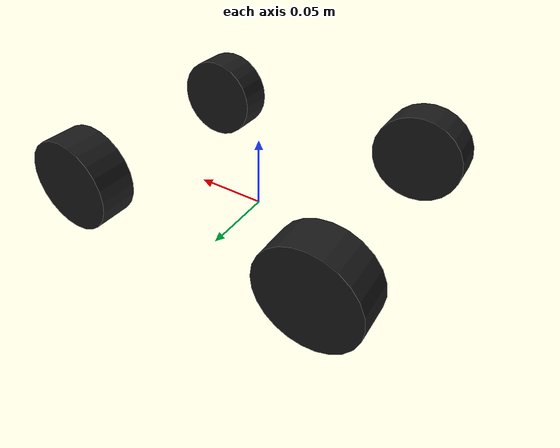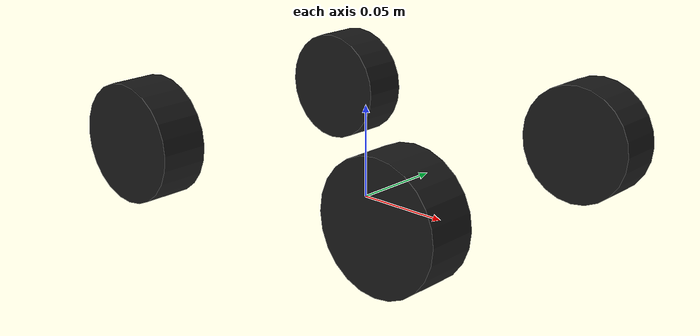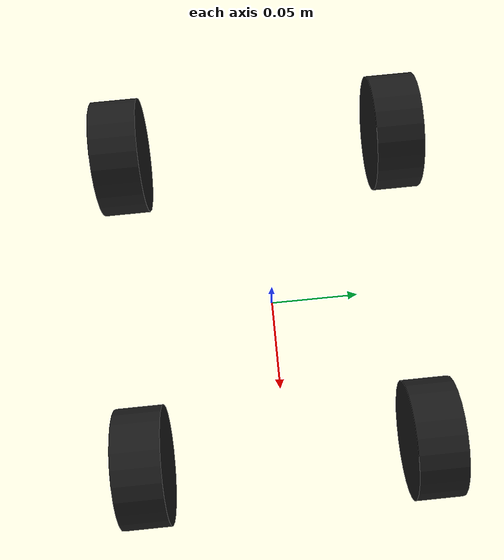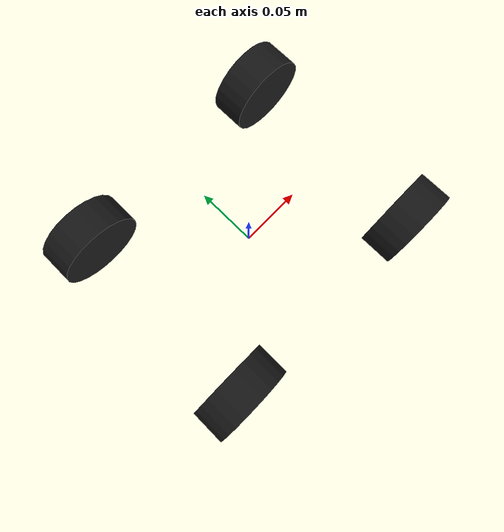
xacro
<?xml version="1.0"?>
<robot xmlns:xacro="http://www.ros.org/wiki/xacro" name="waveshare_servos">
  <xacro:arg name="device_port" default="/dev/ttyUSB1"/>
  <xacro:arg name="baud_rate" default="921600"/>
  <xacro:arg name="io_timeout_ms" default="20"/>
  <xacro:arg name="enable_sync_read" default="false"/>
  <xacro:arg name="estimate_state_from_commands" default="true"/>

  <!-- Tunables: set to your real geometry -->
  <xacro:property name="wheel_radius" value="0.03175"/>      <!-- 3.1 cm -->
  <xacro:property name="wheel_width"  value="0.0254"/>      <!-- 2.5 cm -->
  <xacro:property name="wheel_sep"    value="0.1524"/>      <!-- distance between wheel centers -->

  <xacro:property name="wheel_x_front" value="0.0857"/>
  <xacro:property name="wheel_x_back"  value="-0.0857"/>
  <xacro:property name="wheel_y_left"  value="0.0762"/>
  <xacro:property name="wheel_y_right" value="-0.0762"/>
  <xacro:property name="wheel_z"      value="${wheel_radius}"/>

  <xacro:property name="base_x"       value="0.00"/>      <!-- was 0.2 -->
  <xacro:property name="base_y"       value="0.00"/>      <!-- was 0.16 -->
  <xacro:property name="base_z"       value="0.00"/>       <!-- was 0.06 base height (centered) -->

  <!-- Base -->
  <link name="base_link">
    <visual>
      <origin xyz="0 0 ${wheel_z}"/>
      <geometry>
        <box size="${base_x} ${base_y} ${base_z}"/>
      </geometry>
      <material name="white"><color rgba="1 1 1 1"/></material>
    </visual>
    <inertial>
      <origin xyz="0 0 ${wheel_z}"/>
      <mass value="1.0"/>
      <inertia ixx="0.02" iyy="0.02" izz="0.02" ixy="0" ixz="0" iyz="0"/>
    </inertial>
  </link>

  <!-- FRONT LEFT WHEEL -->
  <link name="front_left_wheel_link">
    <visual>
      <!-- wheel geometry centered at the wheel link frame -->
      <origin xyz="0 0 0" rpy="1.57079632679 0 0"/>
      <geometry>
        <cylinder radius="${wheel_radius}" length="${wheel_width}"/>
      </geometry>
      <material name="black"><color rgba="0.1 0.1 0.1 1"/></material>
    </visual>
  </link>

  <joint name="front_left_wheel_joint" type="continuous">
    <parent link="base_link"/>
    <child link="front_left_wheel_link"/>
    <!-- desired wheel center pose relative to base_link -->
    <origin xyz="${wheel_x_front} ${wheel_y_left} ${wheel_z}"/>
    <axis xyz="0 1 0"/>
    <limit velocity="100.0" effort="0.0"/>
  </joint>

  <!-- FRONT RIGHT WHEEL -->
  <link name="front_right_wheel_link">
    <visual>
      <origin xyz="0 0 0" rpy="1.57079632679 0 0"/>
      <geometry>
        <cylinder radius="${wheel_radius}" length="${wheel_width}"/>
      </geometry>
      <material name="black"><color rgba="0.1 0.1 0.1 1"/></material>
    </visual>
  </link>

  <joint name="front_right_wheel_joint" type="continuous">
    <parent link="base_link"/>
    <child link="front_right_wheel_link"/>
    <origin xyz="${wheel_x_front} ${wheel_y_right} ${wheel_z}"/>
    <axis xyz="0 1 0"/>
    <limit velocity="100.0" effort="0.0"/>
  </joint>

  <!-- BACK LEFT WHEEL -->
  <link name="back_left_wheel_link">
    <visual>
      <origin xyz="0 0 0" rpy="1.57079632679 0 0"/>
      <geometry>
        <cylinder radius="${wheel_radius}" length="${wheel_width}"/>
      </geometry>
      <material name="black"><color rgba="0.1 0.1 0.1 1"/></material>
    </visual>
  </link>

  <joint name="back_left_wheel_joint" type="continuous">
    <parent link="base_link"/>
    <child link="back_left_wheel_link"/>
    <origin xyz="${wheel_x_back} ${wheel_y_left} ${wheel_z}"/>
    <axis xyz="0 1 0"/>
    <limit velocity="100.0" effort="0.0"/>
  </joint>

  <!-- BACK RIGHT WHEEL -->
  <link name="back_right_wheel_link">
    <visual>
      <origin xyz="0 0 0" rpy="1.57079632679 0 0"/>
      <geometry>
        <cylinder radius="${wheel_radius}" length="${wheel_width}"/>
      </geometry>
      <material name="black"><color rgba="0.1 0.1 0.1 1"/></material>
    </visual>
  </link>

  <joint name="back_right_wheel_joint" type="continuous">
    <parent link="base_link"/>
    <child link="back_right_wheel_link"/>
    <origin xyz="${wheel_x_back} ${wheel_y_right} ${wheel_z}"/>
    <axis xyz="0 1 0"/>
    <limit velocity="100.0" effort="0.0"/>
  </joint>

  <!-- ros2_control hardware mapping (your plugin + servo IDs) -->
  <xacro:include filename="$(find waveshare_servos)/description/ros2_control/example.ros2_control.xacro"/>
  <xacro:example_ws_ros2_control name="example_ws_ros2_control"
                                 front_left_joint_name="front_left_wheel_joint" front_left_id="2"
                                 front_right_joint_name="front_right_wheel_joint" front_right_id="1"
                                 back_left_joint_name="back_left_wheel_joint" back_left_id="4"
                                 back_right_joint_name="back_right_wheel_joint" back_right_id="3"
                                 device_port="$(arg device_port)"
                                 baud_rate="$(arg baud_rate)"
                                 io_timeout_ms="$(arg io_timeout_ms)"
                                 enable_sync_read="$(arg enable_sync_read)"
                                 estimate_state_from_commands="$(arg estimate_state_from_commands)"/>

</robot>
